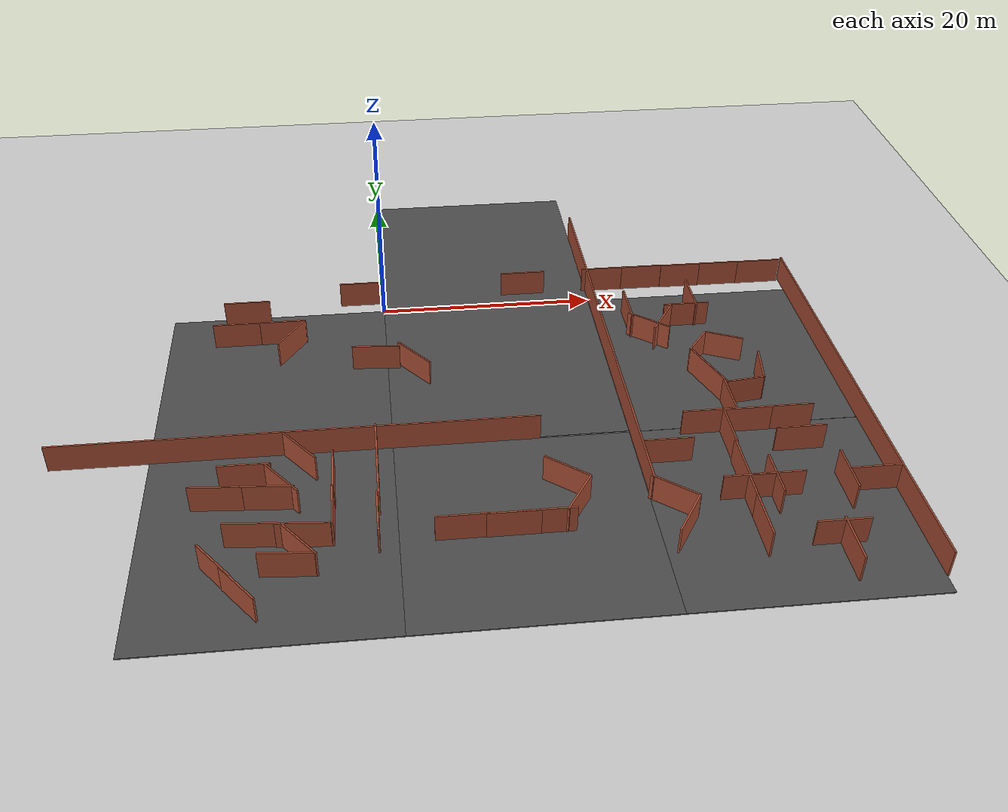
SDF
<sdf version="1.6">
 <world name="default">
  <model name="ground_plane">
   <static>1</static>
   <link name="link">
    <collision name="collision">
     <geometry><plane><normal>0 0 1</normal><size>100 100</size></plane></geometry>
     <surface><friction><ode><mu>100</mu><mu2>50</mu2></ode></friction></surface>
    </collision>
    <visual name="visual">
     <cast_shadows>0</cast_shadows>
     <geometry><plane><normal>0 0 1</normal><size>100 100</size></plane></geometry>
     <material>
      <script><uri>file://media/materials/scripts/gazebo.material</uri><name>Gazebo/Grey</name></script>
     </material>
    </visual>
   </link>
  </model>
  <model name="asphalt_plane">
   <static>1</static>
   <link name="link">
    <collision name="collision"><geometry><box><size>20 20 0.1</size></box></geometry></collision>
    <visual name="visual">
     <cast_shadows>0</cast_shadows>
     <geometry><box><size>20 20 0.1</size></box></geometry>
     <material>
      <script>
       <uri>model://asphalt_plane/materials/scripts</uri>
       <uri>model://asphalt_plane/materials/textures</uri>
       <name>vrc/asphalt</name>
      </script>
     </material>
    </visual>
   </link>
   <pose>10 10 0 0 -0 0</pose>
  </model>
  <model name="asphalt_plane_1">
   <static>1</static>
   <link name="link">
    <collision name="collision"><geometry><box><size>20 20 0.1</size></box></geometry></collision>
    <visual name="visual">
     <cast_shadows>0</cast_shadows>
     <geometry><box><size>20 20 0.1</size></box></geometry>
     <material>
      <script>
       <uri>model://asphalt_plane/materials/scripts</uri>
       <uri>model://asphalt_plane/materials/textures</uri>
       <name>vrc/asphalt</name>
      </script>
     </material>
    </visual>
   </link>
   <pose>-10 -10 0 0 -0 0</pose>
  </model>
  <model name="asphalt_plane_2">
   <static>1</static>
   <link name="link">
    <collision name="collision"><geometry><box><size>20 20 0.1</size></box></geometry></collision>
    <visual name="visual">
     <cast_shadows>0</cast_shadows>
     <geometry><box><size>20 20 0.1</size></box></geometry>
     <material>
      <script>
       <uri>model://asphalt_plane/materials/scripts</uri>
       <uri>model://asphalt_plane/materials/textures</uri>
       <name>vrc/asphalt</name>
      </script>
     </material>
    </visual>
   </link>
   <pose>10 -10 0 0 -0 0</pose>
  </model>
  <model name="longwall_0_clone">
   <pose>20.0948 -8.17942 0 0 0 -1.57092</pose>
   <link name="Wall_0">
    <collision name="Wall_0_Collision">
     <geometry><box><size>40.5 0.15 2.5</size></box></geometry>
     <pose>0 0 1.25 0 -0 0</pose>
    </collision>
    <visual name="Wall_0_Visual">
     <pose>0 0 1.25 0 -0 0</pose>
     <geometry><box><size>40.5 0.15 2.5</size></box></geometry>
     <material>
      <script><uri>file://media/materials/scripts/gazebo.material</uri><name>Gazebo/Bricks</name></script>
      <ambient>1 1 1 1</ambient>
     </material>
    </visual>
    <pose>1e-06 0 0 0 -0 0</pose>
   </link>
   <static>1</static>
  </model>
  <model name="worlds_0_clone">
   <pose>-1 -9 0 0 -0 1.49697</pose>
   <link name="Wall_0">
    <collision name="Wall_0_Collision">
     <geometry><box><size>4.25 0.15 2.5</size></box></geometry>
     <pose>0 0 1.25 0 -0 0</pose>
    </collision>
    <visual name="Wall_0_Visual">
     <pose>0 0 1.25 0 -0 0</pose>
     <geometry><box><size>4.25 0.15 2.5</size></box></geometry>
     <material>
      <script><uri>file://media/materials/scripts/gazebo.material</uri><name>Gazebo/Bricks</name></script>
      <ambient>1 1 1 1</ambient>
     </material>
    </visual>
    <pose>0 -0 0 0 -0 1.5708</pose>
   </link>
   <static>1</static>
  </model>
  <model name="worlds_2_clone">
   <pose>2.34689 -10.1873 0 0 -0 0.67691</pose>
   <link name="Wall_0">
    <collision name="Wall_0_Collision">
     <geometry><box><size>4.25 0.15 2.5</size></box></geometry>
     <pose>0 0 1.25 0 -0 0</pose>
    </collision>
    <visual name="Wall_0_Visual">
     <pose>0 0 1.25 0 -0 0</pose>
     <geometry><box><size>4.25 0.15 2.5</size></box></geometry>
     <material>
      <script><uri>file://media/materials/scripts/gazebo.material</uri><name>Gazebo/Bricks</name></script>
      <ambient>1 1 1 1</ambient>
     </material>
    </visual>
    <pose>0 -0 0 0 -0 1.5708</pose>
   </link>
   <static>1</static>
  </model>
  <model name="worlds_1_clone_0_clone">
   <pose>13.736 1.79456 0 0 0 -1.57092</pose>
   <link name="Wall_0">
    <collision name="Wall_0_Collision">
     <geometry><box><size>4.25 0.15 2.5</size></box></geometry>
     <pose>0 0 1.25 0 -0 0</pose>
    </collision>
    <visual name="Wall_0_Visual">
     <pose>0 0 1.25 0 -0 0</pose>
     <geometry><box><size>4.25 0.15 2.5</size></box></geometry>
     <material>
      <script><uri>file://media/materials/scripts/gazebo.material</uri><name>Gazebo/Bricks</name></script>
      <ambient>1 1 1 1</ambient>
     </material>
    </visual>
    <pose>0 -0 0 0 -0 1.5708</pose>
   </link>
   <static>1</static>
  </model>
  <model name="worlds_1_clone_0_clone_clone_0_clone_clone_0">
   <pose>-13.6699 -4.29855 0 0 0 -1.57092</pose>
   <link name="Wall_0">
    <collision name="Wall_0_Collision">
     <geometry><box><size>4.25 0.15 2.5</size></box></geometry>
     <pose>0 0 1.25 0 -0 0</pose>
    </collision>
    <visual name="Wall_0_Visual">
     <pose>0 0 1.25 0 -0 0</pose>
     <geometry><box><size>4.25 0.15 2.5</size></box></geometry>
     <material>
      <script><uri>file://media/materials/scripts/gazebo.material</uri><name>Gazebo/Bricks</name></script>
      <ambient>1 1 1 1</ambient>
     </material>
    </visual>
    <pose>0 -0 0 0 -0 1.5708</pose>
   </link>
   <static>1</static>
  </model>
  <model name="worlds_1_clone_0_clone_clone_0_clone_clone_1">
   <pose>-9.47339 -4.28892 0 0 0 -1.57092</pose>
   <link name="Wall_0">
    <collision name="Wall_0_Collision">
     <geometry><box><size>4.25 0.15 2.5</size></box></geometry>
     <pose>0 0 1.25 0 -0 0</pose>
    </collision>
    <visual name="Wall_0_Visual">
     <pose>0 0 1.25 0 -0 0</pose>
     <geometry><box><size>4.25 0.15 2.5</size></box></geometry>
     <material>
      <script><uri>file://media/materials/scripts/gazebo.material</uri><name>Gazebo/Bricks</name></script>
      <ambient>1 1 1 1</ambient>
     </material>
    </visual>
    <pose>0 -0 0 0 -0 1.5708</pose>
   </link>
   <static>1</static>
  </model>
  <model name="worlds_1_clone_0_clone_clone_0_clone_clone_0_clone">
   <pose>-12.8938 -0.809745 0 0 0 -1.57092</pose>
   <link name="Wall_0">
    <collision name="Wall_0_Collision">
     <geometry><box><size>4.25 0.15 2.5</size></box></geometry>
     <pose>0 0 1.25 0 -0 0</pose>
    </collision>
    <visual name="Wall_0_Visual">
     <pose>0 0 1.25 0 -0 0</pose>
     <geometry><box><size>4.25 0.15 2.5</size></box></geometry>
     <material>
      <script><uri>file://media/materials/scripts/gazebo.material</uri><name>Gazebo/Bricks</name></script>
      <ambient>1 1 1 1</ambient>
     </material>
    </visual>
    <pose>0 -0 0 0 -0 1.5708</pose>
   </link>
   <static>1</static>
  </model>
  <model name="worlds_1_clone_0_clone_clone_0_clone_clone_0_clone_clone_clone">
   <pose>-2 1.45154 0 0 0 -1.57092</pose>
   <link name="Wall_0">
    <collision name="Wall_0_Collision">
     <geometry><box><size>4.25 0.15 2.5</size></box></geometry>
     <pose>0 0 1.25 0 -0 0</pose>
    </collision>
    <visual name="Wall_0_Visual">
     <pose>0 0 1.25 0 -0 0</pose>
     <geometry><box><size>4.25 0.15 2.5</size></box></geometry>
     <material>
      <script><uri>file://media/materials/scripts/gazebo.material</uri><name>Gazebo/Bricks</name></script>
      <ambient>1 1 1 1</ambient>
     </material>
    </visual>
    <pose>0 -0 0 0 -0 1.5708</pose>
   </link>
   <static>1</static>
  </model>
  <model name="worlds_1_clone_1_clone_7_clone_clone_clone_0">
   <pose>-8.55218 -6 0 0 0 -0.589381</pose>
   <link name="Wall_0">
    <collision name="Wall_0_Collision">
     <geometry><box><size>4.25 0.15 2.5</size></box></geometry>
     <pose>0 0 1.25 0 -0 0</pose>
    </collision>
    <visual name="Wall_0_Visual">
     <pose>0 0 1.25 0 -0 0</pose>
     <geometry><box><size>4.25 0.15 2.5</size></box></geometry>
     <material>
      <script><uri>file://media/materials/scripts/gazebo.material</uri><name>Gazebo/Bricks</name></script>
      <ambient>1 1 1 1</ambient>
     </material>
    </visual>
    <pose>0 -0 0 0 -0 1.5708</pose>
   </link>
   <static>1</static>
  </model>
  <model name="asphalt_plane_4_clone_5">
   <static>1</static>
   <link name="link">
    <collision name="collision"><geometry><box><size>20 20 0.1</size></box></geometry></collision>
    <visual name="visual">
     <cast_shadows>0</cast_shadows>
     <geometry><box><size>20 20 0.1</size></box></geometry>
     <material>
      <script>
       <uri>model://asphalt_plane/materials/scripts</uri>
       <uri>model://asphalt_plane/materials/textures</uri>
       <name>vrc/asphalt</name>
      </script>
     </material>
    </visual>
   </link>
   <pose>-10.0155 -30.1486 0 0 -0 0</pose>
  </model>
  <model name="asphalt_plane_4_clone_7">
   <static>1</static>
   <link name="link">
    <collision name="collision"><geometry><box><size>20 20 0.1</size></box></geometry></collision>
    <visual name="visual">
     <cast_shadows>0</cast_shadows>
     <geometry><box><size>20 20 0.1</size></box></geometry>
     <material>
      <script>
       <uri>model://asphalt_plane/materials/scripts</uri>
       <uri>model://asphalt_plane/materials/textures</uri>
       <name>vrc/asphalt</name>
      </script>
     </material>
    </visual>
   </link>
   <pose>9.97841 -30.1503 0 0 -0 0</pose>
  </model>
  <model name="asphalt_plane_4_clone_8">
   <static>1</static>
   <link name="link">
    <collision name="collision"><geometry><box><size>20 20 0.1</size></box></geometry></collision>
    <visual name="visual">
     <cast_shadows>0</cast_shadows>
     <geometry><box><size>20 20 0.1</size></box></geometry>
     <material>
      <script>
       <uri>model://asphalt_plane/materials/scripts</uri>
       <uri>model://asphalt_plane/materials/textures</uri>
       <name>vrc/asphalt</name>
      </script>
     </material>
    </visual>
   </link>
   <pose>29.9869 -10.112 0 0 -0 0</pose>
  </model>
  <model name="asphalt_plane_4_clone_14">
   <static>1</static>
   <link name="link">
    <collision name="collision"><geometry><box><size>20 20 0.1</size></box></geometry></collision>
    <visual name="visual">
     <cast_shadows>0</cast_shadows>
     <geometry><box><size>20 20 0.1</size></box></geometry>
     <material>
      <script>
       <uri>model://asphalt_plane/materials/scripts</uri>
       <uri>model://asphalt_plane/materials/textures</uri>
       <name>vrc/asphalt</name>
      </script>
     </material>
    </visual>
   </link>
   <pose>29.9745 -30.1402 0 0 -0 0</pose>
  </model>
  <model name="longwall_clone_clone_3_clone_0">
   <pose>39.9316 -18.2995 0 0 0 -1.56602</pose>
   <link name="Wall_0">
    <collision name="Wall_0_Collision">
     <geometry><box><size>40.5 0.15 2.5</size></box></geometry>
     <pose>0 0 1.25 0 -0 0</pose>
    </collision>
    <visual name="Wall_0_Visual">
     <pose>0 0 1.25 0 -0 0</pose>
     <geometry><box><size>40.5 0.15 2.5</size></box></geometry>
     <material>
      <script><uri>file://media/materials/scripts/gazebo.material</uri><name>Gazebo/Bricks</name></script>
      <ambient>1 1 1 1</ambient>
     </material>
    </visual>
    <pose>1e-06 0 0 0 -0 0</pose>
   </link>
   <static>1</static>
  </model>
  <model name="longwall_clone_clone_0">
   <pose>-7.88088 -20.1055 0 0 -0 0</pose>
   <link name="Wall_0">
    <collision name="Wall_0_Collision">
     <geometry><box><size>40.5 0.15 2.5</size></box></geometry>
     <pose>0 0 1.25 0 -0 0</pose>
    </collision>
    <visual name="Wall_0_Visual">
     <pose>0 0 1.25 0 -0 0</pose>
     <geometry><box><size>40.5 0.15 2.5</size></box></geometry>
     <material>
      <script><uri>file://media/materials/scripts/gazebo.material</uri><name>Gazebo/Bricks</name></script>
      <ambient>1 1 1 1</ambient>
     </material>
    </visual>
    <pose>1e-06 0 0 0 -0 0</pose>
   </link>
   <static>1</static>
  </model>
  <model name="worlds_1_clone_0_clone_clone_0_clone_clone_clone">
   <pose>21.7506 1.79775 0 0 0 -1.57092</pose>
   <link name="Wall_0">
    <collision name="Wall_0_Collision">
     <geometry><box><size>4.25 0.15 2.5</size></box></geometry>
     <pose>0 0 1.25 0 -0 0</pose>
    </collision>
    <visual name="Wall_0_Visual">
     <pose>0 0 1.25 0 -0 0</pose>
     <geometry><box><size>4.25 0.15 2.5</size></box></geometry>
     <material>
      <script><uri>file://media/materials/scripts/gazebo.material</uri><name>Gazebo/Bricks</name></script>
      <ambient>1 1 1 1</ambient>
     </material>
    </visual>
    <pose>0 -0 0 0 -0 1.5708</pose>
   </link>
   <static>1</static>
  </model>
  <model name="worlds_1_clone_0_clone_clone_0_clone_clone_clone_0">
   <pose>25.7367 1.77784 0 0 0 -1.57092</pose>
   <link name="Wall_0">
    <collision name="Wall_0_Collision">
     <geometry><box><size>4.25 0.15 2.5</size></box></geometry>
     <pose>0 0 1.25 0 -0 0</pose>
    </collision>
    <visual name="Wall_0_Visual">
     <pose>0 0 1.25 0 -0 0</pose>
     <geometry><box><size>4.25 0.15 2.5</size></box></geometry>
     <material>
      <script><uri>file://media/materials/scripts/gazebo.material</uri><name>Gazebo/Bricks</name></script>
      <ambient>1 1 1 1</ambient>
     </material>
    </visual>
    <pose>0 -0 0 0 -0 1.5708</pose>
   </link>
   <static>1</static>
  </model>
  <model name="worlds_1_clone_0_clone_clone_0_clone_clone_clone_1">
   <pose>29.6674 1.71383 0 0 0 -1.57092</pose>
   <link name="Wall_0">
    <collision name="Wall_0_Collision">
     <geometry><box><size>4.25 0.15 2.5</size></box></geometry>
     <pose>0 0 1.25 0 -0 0</pose>
    </collision>
    <visual name="Wall_0_Visual">
     <pose>0 0 1.25 0 -0 0</pose>
     <geometry><box><size>4.25 0.15 2.5</size></box></geometry>
     <material>
      <script><uri>file://media/materials/scripts/gazebo.material</uri><name>Gazebo/Bricks</name></script>
      <ambient>1 1 1 1</ambient>
     </material>
    </visual>
    <pose>0 -0 0 0 -0 1.5708</pose>
   </link>
   <static>1</static>
  </model>
  <model name="worlds_1_clone_0_clone_clone_0_clone_clone_clone_2">
   <pose>33.5636 1.70747 0 0 0 -1.57092</pose>
   <link name="Wall_0">
    <collision name="Wall_0_Collision">
     <geometry><box><size>4.25 0.15 2.5</size></box></geometry>
     <pose>0 0 1.25 0 -0 0</pose>
    </collision>
    <visual name="Wall_0_Visual">
     <pose>0 0 1.25 0 -0 0</pose>
     <geometry><box><size>4.25 0.15 2.5</size></box></geometry>
     <material>
      <script><uri>file://media/materials/scripts/gazebo.material</uri><name>Gazebo/Bricks</name></script>
      <ambient>1 1 1 1</ambient>
     </material>
    </visual>
    <pose>0 -0 0 0 -0 1.5708</pose>
   </link>
   <static>1</static>
  </model>
  <model name="worlds_1_clone_0_clone_clone_0_clone_clone_clone_3">
   <pose>37.4411 1.6799 0 0 0 -1.57092</pose>
   <link name="Wall_0">
    <collision name="Wall_0_Collision">
     <geometry><box><size>4.25 0.15 2.5</size></box></geometry>
     <pose>0 0 1.25 0 -0 0</pose>
    </collision>
    <visual name="Wall_0_Visual">
     <pose>0 0 1.25 0 -0 0</pose>
     <geometry><box><size>4.25 0.15 2.5</size></box></geometry>
     <material>
      <script><uri>file://media/materials/scripts/gazebo.material</uri><name>Gazebo/Bricks</name></script>
      <ambient>1 1 1 1</ambient>
     </material>
    </visual>
    <pose>0 -0 0 0 -0 1.5708</pose>
   </link>
   <static>1</static>
  </model>
  <model name="worlds_1_clone_1_clone_clone_0_clone">
   <pose>-1.39144 -21.9286 0 0 -0 0</pose>
   <link name="Wall_0">
    <collision name="Wall_0_Collision">
     <geometry><box><size>4.25 0.15 2.5</size></box></geometry>
     <pose>0 0 1.25 0 -0 0</pose>
    </collision>
    <visual name="Wall_0_Visual">
     <pose>0 0 1.25 0 -0 0</pose>
     <geometry><box><size>4.25 0.15 2.5</size></box></geometry>
     <material>
      <script><uri>file://media/materials/scripts/gazebo.material</uri><name>Gazebo/Bricks</name></script>
      <ambient>1 1 1 1</ambient>
     </material>
    </visual>
    <pose>0 -0 0 0 -0 1.5708</pose>
   </link>
   <static>1</static>
  </model>
  <model name="worlds_1_clone_1_clone_clone_0_clone_0">
   <pose>-1.40198 -25.9018 0 0 -0 0</pose>
   <link name="Wall_0">
    <collision name="Wall_0_Collision">
     <geometry><box><size>4.25 0.15 2.5</size></box></geometry>
     <pose>0 0 1.25 0 -0 0</pose>
    </collision>
    <visual name="Wall_0_Visual">
     <pose>0 0 1.25 0 -0 0</pose>
     <geometry><box><size>4.25 0.15 2.5</size></box></geometry>
     <material>
      <script><uri>file://media/materials/scripts/gazebo.material</uri><name>Gazebo/Bricks</name></script>
      <ambient>1 1 1 1</ambient>
     </material>
    </visual>
    <pose>0 -0 0 0 -0 1.5708</pose>
   </link>
   <static>1</static>
  </model>
  <model name="worlds_1_clone_1_clone_clone_0_clone_1">
   <pose>-1.54581 -29.924 0 0 -0 0</pose>
   <link name="Wall_0">
    <collision name="Wall_0_Collision">
     <geometry><box><size>4.25 0.15 2.5</size></box></geometry>
     <pose>0 0 1.25 0 -0 0</pose>
    </collision>
    <visual name="Wall_0_Visual">
     <pose>0 0 1.25 0 -0 0</pose>
     <geometry><box><size>4.25 0.15 2.5</size></box></geometry>
     <material>
      <script><uri>file://media/materials/scripts/gazebo.material</uri><name>Gazebo/Bricks</name></script>
      <ambient>1 1 1 1</ambient>
     </material>
    </visual>
    <pose>0 -0 0 0 -0 1.5708</pose>
   </link>
   <static>1</static>
  </model>
  <model name="room1_clone_1">
   <pose>30.2942 -13.443 0 0 -0 1.93941</pose>
   <link name="Wall_11">
    <collision name="Wall_11_Collision">
     <geometry><box><size>3.25 0.15 2.5</size></box></geometry>
     <pose>0 0 1.25 0 -0 0</pose>
    </collision>
    <visual name="Wall_11_Visual">
     <pose>0 0 1.25 0 -0 0</pose>
     <geometry><box><size>3.25 0.15 2.5</size></box></geometry>
     <material>
      <script><uri>file://media/materials/scripts/gazebo.material</uri><name>Gazebo/Bricks</name></script>
      <ambient>1 1 1 1</ambient>
     </material>
    </visual>
    <pose>3.12132 1.19483 0 0 0 -1.0472</pose>
   </link>
   <link name="Wall_12">
    <collision name="Wall_12_Collision">
     <geometry><box><size>3.5 0.15 2.5</size></box></geometry>
     <pose>0 0 1.25 0 -0 0</pose>
    </collision>
    <visual name="Wall_12_Visual">
     <pose>0 0 1.25 0 -0 0</pose>
     <geometry><box><size>3.5 0.15 2.5</size></box></geometry>
     <material>
      <script><uri>file://media/materials/scripts/gazebo.material</uri><name>Gazebo/Bricks</name></script>
      <ambient>1 1 1 1</ambient>
     </material>
    </visual>
    <pose>2.71192 -1.33192 0 0 0 -2.35619</pose>
   </link>
   <link name="Wall_7">
    <collision name="Wall_7_Collision">
     <geometry><box><size>5.52935 0.15 2.5</size></box></geometry>
     <pose>0 0 1.25 0 -0 0</pose>
    </collision>
    <visual name="Wall_7_Visual">
     <pose>0 0 1.25 0 -0 0</pose>
     <geometry><box><size>5.52935 0.15 2.5</size></box></geometry>
     <material>
      <script><uri>file://media/materials/scripts/gazebo.material</uri><name>Gazebo/Bricks</name></script>
      <ambient>1 1 1 1</ambient>
     </material>
    </visual>
    <pose>-0.343285 2.51793 0 0 0 -3.13444</pose>
   </link>
   <link name="Wall_8">
    <collision name="Wall_8_Collision">
     <geometry><box><size>3.5 0.15 2.5</size></box></geometry>
     <pose>0 0 1.25 0 -0 0</pose>
    </collision>
    <visual name="Wall_8_Visual">
     <pose>0 0 1.25 0 -0 0</pose>
     <geometry><box><size>3.5 0.15 2.5</size></box></geometry>
     <material>
      <script><uri>file://media/materials/scripts/gazebo.material</uri><name>Gazebo/Bricks</name></script>
      <ambient>1 1 1 1</ambient>
     </material>
    </visual>
    <pose>-3.46641 0.880761 0 0 0 -1.8326</pose>
   </link>
   <link name="Wall_9">
    <collision name="Wall_9_Collision">
     <geometry><box><size>3.75 0.15 2.5</size></box></geometry>
     <pose>0 0 1.25 0 -0 0</pose>
    </collision>
    <visual name="Wall_9_Visual">
     <pose>0 0 1.25 0 -0 0</pose>
     <geometry><box><size>3.75 0.15 2.5</size></box></geometry>
     <material>
      <script><uri>file://media/materials/scripts/gazebo.material</uri><name>Gazebo/Bricks</name></script>
      <ambient>1 1 1 1</ambient>
     </material>
    </visual>
    <pose>-2.34109 -1.63716 0 0 0 -0.523599</pose>
   </link>
   <static>1</static>
  </model>
  <model name="worlds_0_clone_clone_0">
   <pose>-14.0338 -26.1944 0 0 -0 1.49697</pose>
   <link name="Wall_0">
    <collision name="Wall_0_Collision">
     <geometry><box><size>4.25 0.15 2.5</size></box></geometry>
     <pose>0 0 1.25 0 -0 0</pose>
    </collision>
    <visual name="Wall_0_Visual">
     <pose>0 0 1.25 0 -0 0</pose>
     <geometry><box><size>4.25 0.15 2.5</size></box></geometry>
     <material>
      <script><uri>file://media/materials/scripts/gazebo.material</uri><name>Gazebo/Bricks</name></script>
      <ambient>1 1 1 1</ambient>
     </material>
    </visual>
    <pose>0 -0 0 0 -0 1.5708</pose>
   </link>
   <static>1</static>
  </model>
  <model name="worlds_0_clone_clone_1">
   <pose>-9.99419 -26.4816 0 0 -0 1.49697</pose>
   <link name="Wall_0">
    <collision name="Wall_0_Collision">
     <geometry><box><size>4.25 0.15 2.5</size></box></geometry>
     <pose>0 0 1.25 0 -0 0</pose>
    </collision>
    <visual name="Wall_0_Visual">
     <pose>0 0 1.25 0 -0 0</pose>
     <geometry><box><size>4.25 0.15 2.5</size></box></geometry>
     <material>
      <script><uri>file://media/materials/scripts/gazebo.material</uri><name>Gazebo/Bricks</name></script>
      <ambient>1 1 1 1</ambient>
     </material>
    </visual>
    <pose>0 -0 0 0 -0 1.5708</pose>
   </link>
   <static>1</static>
  </model>
  <model name="worlds_2_clone_clone_0">
   <pose>-8.91866 -25.553 0 0 -0 0.67691</pose>
   <link name="Wall_0">
    <collision name="Wall_0_Collision">
     <geometry><box><size>4.25 0.15 2.5</size></box></geometry>
     <pose>0 0 1.25 0 -0 0</pose>
    </collision>
    <visual name="Wall_0_Visual">
     <pose>0 0 1.25 0 -0 0</pose>
     <geometry><box><size>4.25 0.15 2.5</size></box></geometry>
     <material>
      <script><uri>file://media/materials/scripts/gazebo.material</uri><name>Gazebo/Bricks</name></script>
      <ambient>1 1 1 1</ambient>
     </material>
    </visual>
    <pose>0 -0 0 0 -0 1.5708</pose>
   </link>
   <static>1</static>
  </model>
  <model name="worlds_1_clone_0_clone_clone_0_clone_clone_1_clone">
   <pose>-11.9094 -23.8093 0 0 0 -1.57092</pose>
   <link name="Wall_0">
    <collision name="Wall_0_Collision">
     <geometry><box><size>4.25 0.15 2.5</size></box></geometry>
     <pose>0 0 1.25 0 -0 0</pose>
    </collision>
    <visual name="Wall_0_Visual">
     <pose>0 0 1.25 0 -0 0</pose>
     <geometry><box><size>4.25 0.15 2.5</size></box></geometry>
     <material>
      <script><uri>file://media/materials/scripts/gazebo.material</uri><name>Gazebo/Bricks</name></script>
      <ambient>1 1 1 1</ambient>
     </material>
    </visual>
    <pose>0 -0 0 0 -0 1.5708</pose>
   </link>
   <static>1</static>
  </model>
  <model name="worlds_2_clone_clone_0_clone">
   <pose>-7.5923 -21.8607 0 0 -0 0.67691</pose>
   <link name="Wall_0">
    <collision name="Wall_0_Collision">
     <geometry><box><size>4.25 0.15 2.5</size></box></geometry>
     <pose>0 0 1.25 0 -0 0</pose>
    </collision>
    <visual name="Wall_0_Visual">
     <pose>0 0 1.25 0 -0 0</pose>
     <geometry><box><size>4.25 0.15 2.5</size></box></geometry>
     <material>
      <script><uri>file://media/materials/scripts/gazebo.material</uri><name>Gazebo/Bricks</name></script>
      <ambient>1 1 1 1</ambient>
     </material>
    </visual>
    <pose>0 -0 0 0 -0 1.5708</pose>
   </link>
   <static>1</static>
  </model>
  <model name="worlds_1_clone_1_clone_clone_0_clone_0_clone">
   <pose>-4.91824 -24.8572 0 0 -0 0</pose>
   <link name="Wall_0">
    <collision name="Wall_0_Collision">
     <geometry><box><size>4.25 0.15 2.5</size></box></geometry>
     <pose>0 0 1.25 0 -0 0</pose>
    </collision>
    <visual name="Wall_0_Visual">
     <pose>0 0 1.25 0 -0 0</pose>
     <geometry><box><size>4.25 0.15 2.5</size></box></geometry>
     <material>
      <script><uri>file://media/materials/scripts/gazebo.material</uri><name>Gazebo/Bricks</name></script>
      <ambient>1 1 1 1</ambient>
     </material>
    </visual>
    <pose>0 -0 0 0 -0 1.5708</pose>
   </link>
   <static>1</static>
  </model>
  <model name="worlds_1_clone_1_clone_clone_0_clone_0_clone_clone">
   <pose>-4.95297 -28.8744 0 0 -0 0</pose>
   <link name="Wall_0">
    <collision name="Wall_0_Collision">
     <geometry><box><size>4.25 0.15 2.5</size></box></geometry>
     <pose>0 0 1.25 0 -0 0</pose>
    </collision>
    <visual name="Wall_0_Visual">
     <pose>0 0 1.25 0 -0 0</pose>
     <geometry><box><size>4.25 0.15 2.5</size></box></geometry>
     <material>
      <script><uri>file://media/materials/scripts/gazebo.material</uri><name>Gazebo/Bricks</name></script>
      <ambient>1 1 1 1</ambient>
     </material>
    </visual>
    <pose>0 -0 0 0 -0 1.5708</pose>
   </link>
   <static>1</static>
  </model>
  <model name="worlds_0_clone_clone_clone">
   <pose>-7.17473 -30.7691 0 0 -0 1.49697</pose>
   <link name="Wall_0">
    <collision name="Wall_0_Collision">
     <geometry><box><size>4.25 0.15 2.5</size></box></geometry>
     <pose>0 0 1.25 0 -0 0</pose>
    </collision>
    <visual name="Wall_0_Visual">
     <pose>0 0 1.25 0 -0 0</pose>
     <geometry><box><size>4.25 0.15 2.5</size></box></geometry>
     <material>
      <script><uri>file://media/materials/scripts/gazebo.material</uri><name>Gazebo/Bricks</name></script>
      <ambient>1 1 1 1</ambient>
     </material>
    </visual>
    <pose>0 -0 0 0 -0 1.5708</pose>
   </link>
   <static>1</static>
  </model>
  <model name="worlds_0_clone_clone_clone_0">
   <pose>-11.104 -30.4234 0 0 -0 1.49697</pose>
   <link name="Wall_0">
    <collision name="Wall_0_Collision">
     <geometry><box><size>4.25 0.15 2.5</size></box></geometry>
     <pose>0 0 1.25 0 -0 0</pose>
    </collision>
    <visual name="Wall_0_Visual">
     <pose>0 0 1.25 0 -0 0</pose>
     <geometry><box><size>4.25 0.15 2.5</size></box></geometry>
     <material>
      <script><uri>file://media/materials/scripts/gazebo.material</uri><name>Gazebo/Bricks</name></script>
      <ambient>1 1 1 1</ambient>
     </material>
    </visual>
    <pose>0 -0 0 0 -0 1.5708</pose>
   </link>
   <static>1</static>
  </model>
  <model name="worlds_2_clone_clone_0_clone_2">
   <pose>-13.5223 -33.8944 0 0 -0 0.67691</pose>
   <link name="Wall_0">
    <collision name="Wall_0_Collision">
     <geometry><box><size>4.25 0.15 2.5</size></box></geometry>
     <pose>0 0 1.25 0 -0 0</pose>
    </collision>
    <visual name="Wall_0_Visual">
     <pose>0 0 1.25 0 -0 0</pose>
     <geometry><box><size>4.25 0.15 2.5</size></box></geometry>
     <material>
      <script><uri>file://media/materials/scripts/gazebo.material</uri><name>Gazebo/Bricks</name></script>
      <ambient>1 1 1 1</ambient>
     </material>
    </visual>
    <pose>0 -0 0 0 -0 1.5708</pose>
   </link>
   <static>1</static>
  </model>
  <model name="worlds_2_clone_clone_0_clone_3">
   <pose>-11.7246 -36.2095 0 0 -0 0.67691</pose>
   <link name="Wall_0">
    <collision name="Wall_0_Collision">
     <geometry><box><size>4.25 0.15 2.5</size></box></geometry>
     <pose>0 0 1.25 0 -0 0</pose>
    </collision>
    <visual name="Wall_0_Visual">
     <pose>0 0 1.25 0 -0 0</pose>
     <geometry><box><size>4.25 0.15 2.5</size></box></geometry>
     <material>
      <script><uri>file://media/materials/scripts/gazebo.material</uri><name>Gazebo/Bricks</name></script>
      <ambient>1 1 1 1</ambient>
     </material>
    </visual>
    <pose>0 -0 0 0 -0 1.5708</pose>
   </link>
   <static>1</static>
  </model>
  <model name="worlds_2_clone_clone_0_clone_2_clone">
   <pose>-7.45381 -32.2899 0 0 -0 0.67691</pose>
   <link name="Wall_0">
    <collision name="Wall_0_Collision">
     <geometry><box><size>4.25 0.15 2.5</size></box></geometry>
     <pose>0 0 1.25 0 -0 0</pose>
    </collision>
    <visual name="Wall_0_Visual">
     <pose>0 0 1.25 0 -0 0</pose>
     <geometry><box><size>4.25 0.15 2.5</size></box></geometry>
     <material>
      <script><uri>file://media/materials/scripts/gazebo.material</uri><name>Gazebo/Bricks</name></script>
      <ambient>1 1 1 1</ambient>
     </material>
    </visual>
    <pose>0 -0 0 0 -0 1.5708</pose>
   </link>
   <static>1</static>
  </model>
  <model name="worlds_0_clone_clone_1_clone">
   <pose>-8.33317 -33.6977 0 0 -0 1.49697</pose>
   <link name="Wall_0">
    <collision name="Wall_0_Collision">
     <geometry><box><size>4.25 0.15 2.5</size></box></geometry>
     <pose>0 0 1.25 0 -0 0</pose>
    </collision>
    <visual name="Wall_0_Visual">
     <pose>0 0 1.25 0 -0 0</pose>
     <geometry><box><size>4.25 0.15 2.5</size></box></geometry>
     <material>
      <script><uri>file://media/materials/scripts/gazebo.material</uri><name>Gazebo/Bricks</name></script>
      <ambient>1 1 1 1</ambient>
     </material>
    </visual>
    <pose>0 -0 0 0 -0 1.5708</pose>
   </link>
   <static>1</static>
  </model>
  <model name="worlds_1_clone_0_clone_clone_0_clone_clone_0_clone_clone_clone_clone">
   <pose>4.81779 -31.1067 0 0 0 -1.57092</pose>
   <link name="Wall_0">
    <collision name="Wall_0_Collision">
     <geometry><box><size>4.25 0.15 2.5</size></box></geometry>
     <pose>0 0 1.25 0 -0 0</pose>
    </collision>
    <visual name="Wall_0_Visual">
     <pose>0 0 1.25 0 -0 0</pose>
     <geometry><box><size>4.25 0.15 2.5</size></box></geometry>
     <material>
      <script><uri>file://media/materials/scripts/gazebo.material</uri><name>Gazebo/Bricks</name></script>
      <ambient>1 1 1 1</ambient>
     </material>
    </visual>
    <pose>0 -0 0 0 -0 1.5708</pose>
   </link>
   <static>1</static>
  </model>
  <model name="worlds_1_clone_0_clone_clone_0_clone_clone_0_clone_clone_clone_clone_0">
   <pose>8.72962 -31.1514 0 0 0 -1.57092</pose>
   <link name="Wall_0">
    <collision name="Wall_0_Collision">
     <geometry><box><size>4.25 0.15 2.5</size></box></geometry>
     <pose>0 0 1.25 0 -0 0</pose>
    </collision>
    <visual name="Wall_0_Visual">
     <pose>0 0 1.25 0 -0 0</pose>
     <geometry><box><size>4.25 0.15 2.5</size></box></geometry>
     <material>
      <script><uri>file://media/materials/scripts/gazebo.material</uri><name>Gazebo/Bricks</name></script>
      <ambient>1 1 1 1</ambient>
     </material>
    </visual>
    <pose>0 -0 0 0 -0 1.5708</pose>
   </link>
   <static>1</static>
  </model>
  <model name="worlds_1_clone_0_clone_clone_0_clone_clone_0_clone_clone_clone_clone_1">
   <pose>11.493 -31.135 0 0 0 -1.57092</pose>
   <link name="Wall_0">
    <collision name="Wall_0_Collision">
     <geometry><box><size>4.25 0.15 2.5</size></box></geometry>
     <pose>0 0 1.25 0 -0 0</pose>
    </collision>
    <visual name="Wall_0_Visual">
     <pose>0 0 1.25 0 -0 0</pose>
     <geometry><box><size>4.25 0.15 2.5</size></box></geometry>
     <material>
      <script><uri>file://media/materials/scripts/gazebo.material</uri><name>Gazebo/Bricks</name></script>
      <ambient>1 1 1 1</ambient>
     </material>
    </visual>
    <pose>0 -0 0 0 -0 1.5708</pose>
   </link>
   <static>1</static>
  </model>
  <model name="worlds_1_clone_1_clone_7_clone_clone_clone_clone_0">
   <pose>14.0196 -29.5132 0 0 0 -0.589381</pose>
   <link name="Wall_0">
    <collision name="Wall_0_Collision">
     <geometry><box><size>4.25 0.15 2.5</size></box></geometry>
     <pose>0 0 1.25 0 -0 0</pose>
    </collision>
    <visual name="Wall_0_Visual">
     <pose>0 0 1.25 0 -0 0</pose>
     <geometry><box><size>4.25 0.15 2.5</size></box></geometry>
     <material>
      <script><uri>file://media/materials/scripts/gazebo.material</uri><name>Gazebo/Bricks</name></script>
      <ambient>1 1 1 1</ambient>
     </material>
    </visual>
    <pose>0 -0 0 0 -0 1.5708</pose>
   </link>
   <static>1</static>
  </model>
  <model name="worlds_1_clone_1_clone_7_clone_clone_0_clone_0_clone">
   <pose>13.5356 -26.452 0 0 -0 0.90029</pose>
   <link name="Wall_0">
    <collision name="Wall_0_Collision">
     <geometry><box><size>4.25 0.15 2.5</size></box></geometry>
     <pose>0 0 1.25 0 -0 0</pose>
    </collision>
    <visual name="Wall_0_Visual">
     <pose>0 0 1.25 0 -0 0</pose>
     <geometry><box><size>4.25 0.15 2.5</size></box></geometry>
     <material>
      <script><uri>file://media/materials/scripts/gazebo.material</uri><name>Gazebo/Bricks</name></script>
      <ambient>1 1 1 1</ambient>
     </material>
    </visual>
    <pose>0 -0 0 0 -0 1.5708</pose>
   </link>
   <static>1</static>
  </model>
  <model name="worlds_1_clone_0_clone_clone_clone">
   <pose>33.5149 -23.633 0 0 0 -1.57092</pose>
   <link name="Wall_0">
    <collision name="Wall_0_Collision">
     <geometry><box><size>4.25 0.15 2.5</size></box></geometry>
     <pose>0 0 1.25 0 -0 0</pose>
    </collision>
    <visual name="Wall_0_Visual">
     <pose>0 0 1.25 0 -0 0</pose>
     <geometry><box><size>4.25 0.15 2.5</size></box></geometry>
     <material>
      <script><uri>file://media/materials/scripts/gazebo.material</uri><name>Gazebo/Bricks</name></script>
      <ambient>1 1 1 1</ambient>
     </material>
    </visual>
    <pose>0 -0 0 0 -0 1.5708</pose>
   </link>
   <static>1</static>
  </model>
  <model name="worlds_1_clone_0_clone_clone_clone_0">
   <pose>33.2444 -34.4697 0 0 0 -1.57092</pose>
   <link name="Wall_0">
    <collision name="Wall_0_Collision">
     <geometry><box><size>4.25 0.15 2.5</size></box></geometry>
     <pose>0 0 1.25 0 -0 0</pose>
    </collision>
    <visual name="Wall_0_Visual">
     <pose>0 0 1.25 0 -0 0</pose>
     <geometry><box><size>4.25 0.15 2.5</size></box></geometry>
     <material>
      <script><uri>file://media/materials/scripts/gazebo.material</uri><name>Gazebo/Bricks</name></script>
      <ambient>1 1 1 1</ambient>
     </material>
    </visual>
    <pose>0 -0 0 0 -0 1.5708</pose>
   </link>
   <static>1</static>
  </model>
  <model name="worlds_1_clone_0_clone_clone_clone_1">
   <pose>27.5975 -28.9334 0 0 0 -1.57092</pose>
   <link name="Wall_0">
    <collision name="Wall_0_Collision">
     <geometry><box><size>4.25 0.15 2.5</size></box></geometry>
     <pose>0 0 1.25 0 -0 0</pose>
    </collision>
    <visual name="Wall_0_Visual">
     <pose>0 0 1.25 0 -0 0</pose>
     <geometry><box><size>4.25 0.15 2.5</size></box></geometry>
     <material>
      <script><uri>file://media/materials/scripts/gazebo.material</uri><name>Gazebo/Bricks</name></script>
      <ambient>1 1 1 1</ambient>
     </material>
    </visual>
    <pose>0 -0 0 0 -0 1.5708</pose>
   </link>
   <static>1</static>
  </model>
  <model name="worlds_1_clone_0_clone_clone_clone_2">
   <pose>37.7856 -28.9348 0 0 0 -1.57092</pose>
   <link name="Wall_0">
    <collision name="Wall_0_Collision">
     <geometry><box><size>4.25 0.15 2.5</size></box></geometry>
     <pose>0 0 1.25 0 -0 0</pose>
    </collision>
    <visual name="Wall_0_Visual">
     <pose>0 0 1.25 0 -0 0</pose>
     <geometry><box><size>4.25 0.15 2.5</size></box></geometry>
     <material>
      <script><uri>file://media/materials/scripts/gazebo.material</uri><name>Gazebo/Bricks</name></script>
      <ambient>1 1 1 1</ambient>
     </material>
    </visual>
    <pose>0 -0 0 0 -0 1.5708</pose>
   </link>
   <static>1</static>
  </model>
  <model name="worlds_1_clone_clone_clone_clone">
   <pose>35.6489 -28.894 0 0 -0 0</pose>
   <link name="Wall_0">
    <collision name="Wall_0_Collision">
     <geometry><box><size>4.25 0.15 2.5</size></box></geometry>
     <pose>0 0 1.25 0 -0 0</pose>
    </collision>
    <visual name="Wall_0_Visual">
     <pose>0 0 1.25 0 -0 0</pose>
     <geometry><box><size>4.25 0.15 2.5</size></box></geometry>
     <material>
      <script><uri>file://media/materials/scripts/gazebo.material</uri><name>Gazebo/Bricks</name></script>
      <ambient>1 1 1 1</ambient>
     </material>
    </visual>
    <pose>0 -0 0 0 -0 1.5708</pose>
   </link>
   <static>1</static>
  </model>
  <model name="worlds_1_clone_clone_clone_clone_0">
   <pose>29.734 -28.8659 0 0 -0 0</pose>
   <link name="Wall_0">
    <collision name="Wall_0_Collision">
     <geometry><box><size>4.25 0.15 2.5</size></box></geometry>
     <pose>0 0 1.25 0 -0 0</pose>
    </collision>
    <visual name="Wall_0_Visual">
     <pose>0 0 1.25 0 -0 0</pose>
     <geometry><box><size>4.25 0.15 2.5</size></box></geometry>
     <material>
      <script><uri>file://media/materials/scripts/gazebo.material</uri><name>Gazebo/Bricks</name></script>
      <ambient>1 1 1 1</ambient>
     </material>
    </visual>
    <pose>0 -0 0 0 -0 1.5708</pose>
   </link>
   <static>1</static>
  </model>
  <model name="worlds_1_clone_clone_clone_clone_1">
   <pose>33.381 -36.268 0 0 -0 0</pose>
   <link name="Wall_0">
    <collision name="Wall_0_Collision">
     <geometry><box><size>4.25 0.15 2.5</size></box></geometry>
     <pose>0 0 1.25 0 -0 0</pose>
    </collision>
    <visual name="Wall_0_Visual">
     <pose>0 0 1.25 0 -0 0</pose>
     <geometry><box><size>4.25 0.15 2.5</size></box></geometry>
     <material>
      <script><uri>file://media/materials/scripts/gazebo.material</uri><name>Gazebo/Bricks</name></script>
      <ambient>1 1 1 1</ambient>
     </material>
    </visual>
    <pose>0 -0 0 0 -0 1.5708</pose>
   </link>
   <static>1</static>
  </model>
  <model name="worlds_1_clone_clone_clone_clone_2">
   <pose>27.5229 -30.8692 0 0 -0 0</pose>
   <link name="Wall_0">
    <collision name="Wall_0_Collision">
     <geometry><box><size>4.25 0.15 2.5</size></box></geometry>
     <pose>0 0 1.25 0 -0 0</pose>
    </collision>
    <visual name="Wall_0_Visual">
     <pose>0 0 1.25 0 -0 0</pose>
     <geometry><box><size>4.25 0.15 2.5</size></box></geometry>
     <material>
      <script><uri>file://media/materials/scripts/gazebo.material</uri><name>Gazebo/Bricks</name></script>
      <ambient>1 1 1 1</ambient>
     </material>
    </visual>
    <pose>0 -0 0 0 -0 1.5708</pose>
   </link>
   <static>1</static>
  </model>
  <model name="worlds_1_clone_clone_clone_clone_3">
   <pose>27.5192 -33.2309 0 0 -0 0</pose>
   <link name="Wall_0">
    <collision name="Wall_0_Collision">
     <geometry><box><size>4.25 0.15 2.5</size></box></geometry>
     <pose>0 0 1.25 0 -0 0</pose>
    </collision>
    <visual name="Wall_0_Visual">
     <pose>0 0 1.25 0 -0 0</pose>
     <geometry><box><size>4.25 0.15 2.5</size></box></geometry>
     <material>
      <script><uri>file://media/materials/scripts/gazebo.material</uri><name>Gazebo/Bricks</name></script>
      <ambient>1 1 1 1</ambient>
     </material>
    </visual>
    <pose>0 -0 0 0 -0 1.5708</pose>
   </link>
   <static>1</static>
  </model>
  <model name="worlds_1_clone_clone_clone_clone_4">
   <pose>27.6096 -26.7617 0 0 -0 0</pose>
   <link name="Wall_0">
    <collision name="Wall_0_Collision">
     <geometry><box><size>4.25 0.15 2.5</size></box></geometry>
     <pose>0 0 1.25 0 -0 0</pose>
    </collision>
    <visual name="Wall_0_Visual">
     <pose>0 0 1.25 0 -0 0</pose>
     <geometry><box><size>4.25 0.15 2.5</size></box></geometry>
     <material>
      <script><uri>file://media/materials/scripts/gazebo.material</uri><name>Gazebo/Bricks</name></script>
      <ambient>1 1 1 1</ambient>
     </material>
    </visual>
    <pose>0 -0 0 0 -0 1.5708</pose>
   </link>
   <static>1</static>
  </model>
  <model name="worlds_1_clone_clone_clone_clone_5">
   <pose>27.707 -22.8815 0 0 -0 0</pose>
   <link name="Wall_0">
    <collision name="Wall_0_Collision">
     <geometry><box><size>4.25 0.15 2.5</size></box></geometry>
     <pose>0 0 1.25 0 -0 0</pose>
    </collision>
    <visual name="Wall_0_Visual">
     <pose>0 0 1.25 0 -0 0</pose>
     <geometry><box><size>4.25 0.15 2.5</size></box></geometry>
     <material>
      <script><uri>file://media/materials/scripts/gazebo.material</uri><name>Gazebo/Bricks</name></script>
      <ambient>1 1 1 1</ambient>
     </material>
    </visual>
    <pose>0 -0 0 0 -0 1.5708</pose>
   </link>
   <static>1</static>
  </model>
  <model name="worlds_1_clone_0_clone_clone_clone_clone">
   <pose>29.7687 -20.8654 0 0 0 -1.57092</pose>
   <link name="Wall_0">
    <collision name="Wall_0_Collision">
     <geometry><box><size>4.25 0.15 2.5</size></box></geometry>
     <pose>0 0 1.25 0 -0 0</pose>
    </collision>
    <visual name="Wall_0_Visual">
     <pose>0 0 1.25 0 -0 0</pose>
     <geometry><box><size>4.25 0.15 2.5</size></box></geometry>
     <material>
      <script><uri>file://media/materials/scripts/gazebo.material</uri><name>Gazebo/Bricks</name></script>
      <ambient>1 1 1 1</ambient>
     </material>
    </visual>
    <pose>0 -0 0 0 -0 1.5708</pose>
   </link>
   <static>1</static>
  </model>
  <model name="worlds_1_clone_0_clone_clone_clone_clone_0">
   <pose>33.3358 -20.8342 0 0 0 -1.57092</pose>
   <link name="Wall_0">
    <collision name="Wall_0_Collision">
     <geometry><box><size>4.25 0.15 2.5</size></box></geometry>
     <pose>0 0 1.25 0 -0 0</pose>
    </collision>
    <visual name="Wall_0_Visual">
     <pose>0 0 1.25 0 -0 0</pose>
     <geometry><box><size>4.25 0.15 2.5</size></box></geometry>
     <material>
      <script><uri>file://media/materials/scripts/gazebo.material</uri><name>Gazebo/Bricks</name></script>
      <ambient>1 1 1 1</ambient>
     </material>
    </visual>
    <pose>0 -0 0 0 -0 1.5708</pose>
   </link>
   <static>1</static>
  </model>
  <model name="worlds_1_clone_0_clone_clone_clone_clone_1">
   <pose>30.0078 -28.8997 0 0 0 -1.57092</pose>
   <link name="Wall_0">
    <collision name="Wall_0_Collision">
     <geometry><box><size>4.25 0.15 2.5</size></box></geometry>
     <pose>0 0 1.25 0 -0 0</pose>
    </collision>
    <visual name="Wall_0_Visual">
     <pose>0 0 1.25 0 -0 0</pose>
     <geometry><box><size>4.25 0.15 2.5</size></box></geometry>
     <material>
      <script><uri>file://media/materials/scripts/gazebo.material</uri><name>Gazebo/Bricks</name></script>
      <ambient>1 1 1 1</ambient>
     </material>
    </visual>
    <pose>0 -0 0 0 -0 1.5708</pose>
   </link>
   <static>1</static>
  </model>
  <model name="worlds_1_clone_0_clone_clone_clone_clone_2">
   <pose>26.3534 -20.7976 0 0 0 -1.57092</pose>
   <link name="Wall_0">
    <collision name="Wall_0_Collision">
     <geometry><box><size>4.25 0.15 2.5</size></box></geometry>
     <pose>0 0 1.25 0 -0 0</pose>
    </collision>
    <visual name="Wall_0_Visual">
     <pose>0 0 1.25 0 -0 0</pose>
     <geometry><box><size>4.25 0.15 2.5</size></box></geometry>
     <material>
      <script><uri>file://media/materials/scripts/gazebo.material</uri><name>Gazebo/Bricks</name></script>
      <ambient>1 1 1 1</ambient>
     </material>
    </visual>
    <pose>0 -0 0 0 -0 1.5708</pose>
   </link>
   <static>1</static>
  </model>
  <model name="worlds_1_clone_0_clone_clone_clone_clone_3">
   <pose>22.2405 -24.1054 0 0 0 -1.57092</pose>
   <link name="Wall_0">
    <collision name="Wall_0_Collision">
     <geometry><box><size>4.25 0.15 2.5</size></box></geometry>
     <pose>0 0 1.25 0 -0 0</pose>
    </collision>
    <visual name="Wall_0_Visual">
     <pose>0 0 1.25 0 -0 0</pose>
     <geometry><box><size>4.25 0.15 2.5</size></box></geometry>
     <material>
      <script><uri>file://media/materials/scripts/gazebo.material</uri><name>Gazebo/Bricks</name></script>
      <ambient>1 1 1 1</ambient>
     </material>
    </visual>
    <pose>0 -0 0 0 -0 1.5708</pose>
   </link>
   <static>1</static>
  </model>
  <model name="worlds_1_clone_clone_clone_clone_5_clone">
   <pose>28.8638 -18.7584 0 0 -0 0</pose>
   <link name="Wall_0">
    <collision name="Wall_0_Collision">
     <geometry><box><size>4.25 0.15 2.5</size></box></geometry>
     <pose>0 0 1.25 0 -0 0</pose>
    </collision>
    <visual name="Wall_0_Visual">
     <pose>0 0 1.25 0 -0 0</pose>
     <geometry><box><size>4.25 0.15 2.5</size></box></geometry>
     <material>
      <script><uri>file://media/materials/scripts/gazebo.material</uri><name>Gazebo/Bricks</name></script>
      <ambient>1 1 1 1</ambient>
     </material>
    </visual>
    <pose>0 -0 0 0 -0 1.5708</pose>
   </link>
   <static>1</static>
  </model>
  <model name="worlds_1_clone_1_clone_7_clone_clone_0_clone_0_clone_clone">
   <pose>21.537 -29.4816 0 0 -0 0.90029</pose>
   <link name="Wall_0">
    <collision name="Wall_0_Collision">
     <geometry><box><size>4.25 0.15 2.5</size></box></geometry>
     <pose>0 0 1.25 0 -0 0</pose>
    </collision>
    <visual name="Wall_0_Visual">
     <pose>0 0 1.25 0 -0 0</pose>
     <geometry><box><size>4.25 0.15 2.5</size></box></geometry>
     <material>
      <script><uri>file://media/materials/scripts/gazebo.material</uri><name>Gazebo/Bricks</name></script>
      <ambient>1 1 1 1</ambient>
     </material>
    </visual>
    <pose>0 -0 0 0 -0 1.5708</pose>
   </link>
   <static>1</static>
  </model>
  <model name="worlds_1_clone_1_clone_7_clone_clone_clone_clone_0_clone">
   <pose>21.9701 -32.5172 0 0 0 -0.589381</pose>
   <link name="Wall_0">
    <collision name="Wall_0_Collision">
     <geometry><box><size>4.25 0.15 2.5</size></box></geometry>
     <pose>0 0 1.25 0 -0 0</pose>
    </collision>
    <visual name="Wall_0_Visual">
     <pose>0 0 1.25 0 -0 0</pose>
     <geometry><box><size>4.25 0.15 2.5</size></box></geometry>
     <material>
      <script><uri>file://media/materials/scripts/gazebo.material</uri><name>Gazebo/Bricks</name></script>
      <ambient>1 1 1 1</ambient>
     </material>
    </visual>
    <pose>0 -0 0 0 -0 1.5708</pose>
   </link>
   <static>1</static>
  </model>
  <model name="worlds_1_clone_1_clone_7_clone_clone_clone_clone_0_clone_0">
   <pose>25.7817 -6.92131 0 0 0 -0.589381</pose>
   <link name="Wall_0">
    <collision name="Wall_0_Collision">
     <geometry><box><size>4.25 0.15 2.5</size></box></geometry>
     <pose>0 0 1.25 0 -0 0</pose>
    </collision>
    <visual name="Wall_0_Visual">
     <pose>0 0 1.25 0 -0 0</pose>
     <geometry><box><size>4.25 0.15 2.5</size></box></geometry>
     <material>
      <script><uri>file://media/materials/scripts/gazebo.material</uri><name>Gazebo/Bricks</name></script>
      <ambient>1 1 1 1</ambient>
     </material>
    </visual>
    <pose>0 -0 0 0 -0 1.5708</pose>
   </link>
   <static>1</static>
  </model>
  <model name="worlds_1_clone_1_clone_7_clone_clone_0_clone_0_clone_clone_clone">
   <pose>24.3284 -7.35868 0 0 -0 0.90029</pose>
   <link name="Wall_0">
    <collision name="Wall_0_Collision">
     <geometry><box><size>4.25 0.15 2.5</size></box></geometry>
     <pose>0 0 1.25 0 -0 0</pose>
    </collision>
    <visual name="Wall_0_Visual">
     <pose>0 0 1.25 0 -0 0</pose>
     <geometry><box><size>4.25 0.15 2.5</size></box></geometry>
     <material>
      <script><uri>file://media/materials/scripts/gazebo.material</uri><name>Gazebo/Bricks</name></script>
      <ambient>1 1 1 1</ambient>
     </material>
    </visual>
    <pose>0 -0 0 0 -0 1.5708</pose>
   </link>
   <static>1</static>
  </model>
  <model name="worlds_1_clone_0_clone_clone_clone_clone_3_clone">
   <pose>28.4155 -5.05378 0 0 0 -1.57092</pose>
   <link name="Wall_0">
    <collision name="Wall_0_Collision">
     <geometry><box><size>4.25 0.15 2.5</size></box></geometry>
     <pose>0 0 1.25 0 -0 0</pose>
    </collision>
    <visual name="Wall_0_Visual">
     <pose>0 0 1.25 0 -0 0</pose>
     <geometry><box><size>4.25 0.15 2.5</size></box></geometry>
     <material>
      <script><uri>file://media/materials/scripts/gazebo.material</uri><name>Gazebo/Bricks</name></script>
      <ambient>1 1 1 1</ambient>
     </material>
    </visual>
    <pose>0 -0 0 0 -0 1.5708</pose>
   </link>
   <static>1</static>
  </model>
  <model name="worlds_1_clone_clone_clone_clone_5_clone_0">
   <pose>29.3488 -3.1598 0 0 -0 0</pose>
   <link name="Wall_0">
    <collision name="Wall_0_Collision">
     <geometry><box><size>4.25 0.15 2.5</size></box></geometry>
     <pose>0 0 1.25 0 -0 0</pose>
    </collision>
    <visual name="Wall_0_Visual">
     <pose>0 0 1.25 0 -0 0</pose>
     <geometry><box><size>4.25 0.15 2.5</size></box></geometry>
     <material>
      <script><uri>file://media/materials/scripts/gazebo.material</uri><name>Gazebo/Bricks</name></script>
      <ambient>1 1 1 1</ambient>
     </material>
    </visual>
    <pose>0 -0 0 0 -0 1.5708</pose>
   </link>
   <static>1</static>
  </model>
  <model name="worlds_1_clone_clone_clone_clone_5_clone_1">
   <pose>22.9562 -4.46124 0 0 -0 0</pose>
   <link name="Wall_0">
    <collision name="Wall_0_Collision">
     <geometry><box><size>4.25 0.15 2.5</size></box></geometry>
     <pose>0 0 1.25 0 -0 0</pose>
    </collision>
    <visual name="Wall_0_Visual">
     <pose>0 0 1.25 0 -0 0</pose>
     <geometry><box><size>4.25 0.15 2.5</size></box></geometry>
     <material>
      <script><uri>file://media/materials/scripts/gazebo.material</uri><name>Gazebo/Bricks</name></script>
      <ambient>1 1 1 1</ambient>
     </material>
    </visual>
    <pose>0 -0 0 0 -0 1.5708</pose>
   </link>
   <static>1</static>
  </model>
 </world>
</sdf>
